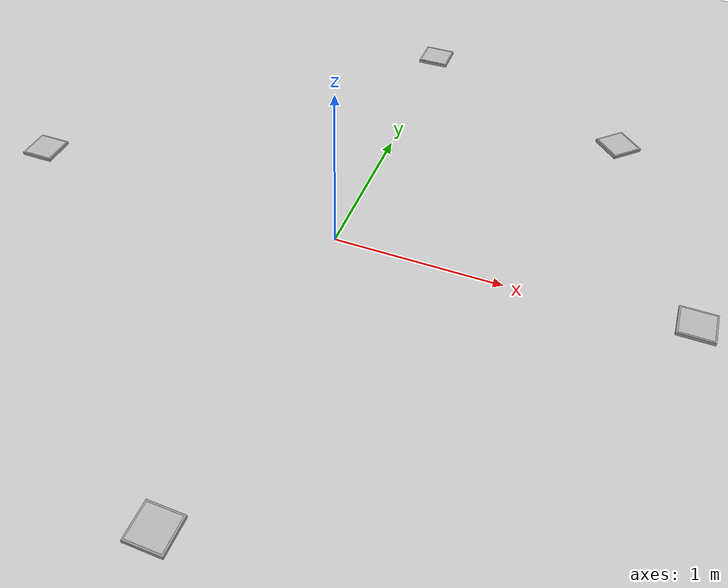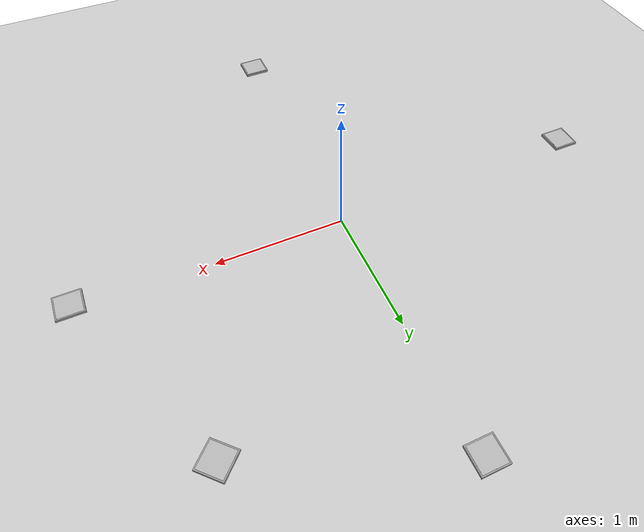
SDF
<sdf version="1.7">
  <world name="default">

    <!-- Light and ground -->
    <include>
      <uri>model://sun</uri>
    </include>

    <include>
      <uri>model://ground_plane</uri>
    </include>

    <!-- ================= MARKER 1 ================= -->
    <model name="marker1_box">
      <static>true</static>
      <pose>2 0 0.1 0 0 0</pose>

      <!-- Grey box -->
      <link name="box">
        <visual name="box_visual">
          <geometry>
            <box>
              <size>0.2 0.2 0.02</size>
            </box>
          </geometry>
          <material>
            <script>
              <name>Gazebo/Grey</name>
            </script>
          </material>
        </visual>
      </link>

      <!-- Marker face -->
      <link name="marker_face">
        <pose>0 0 0.011 0 0 0</pose>
        <visual name="marker_visual">
          <geometry>
            <plane>
              <normal>0 0 1</normal>
              <size>0.18 0.18</size>
            </plane>
          </geometry>
          <material>
            <script>
              <uri>file:///home/med/.gazebo/materials/scripts</uri>
              <name>Aruco/Marker1</name>
            </script>
          </material>
          <cast_shadows>false</cast_shadows>
        </visual>
      </link>
    </model>

    <!-- ================= MARKER 2 ================= -->
    <model name="marker2_box">
      <static>true</static>
      <pose>0 2 0.1 0 0 1.57</pose>

      <link name="box">
        <visual name="box_visual">
          <geometry>
            <box>
              <size>0.2 0.2 0.02</size>
            </box>
          </geometry>
          <material>
            <script>
              <name>Gazebo/Grey</name>
            </script>
          </material>
        </visual>
      </link>

      <link name="marker_face">
        <pose>0 0 0.011 0 0 0</pose>
        <visual name="marker_visual">
          <geometry>
            <plane>
              <normal>0 0 1</normal>
              <size>0.18 0.18</size>
            </plane>
          </geometry>
          <material>
            <script>
              <uri>file:///home/med/.gazebo/materials/scripts</uri>
              <name>Aruco/Marker2</name>
            </script>
          </material>
          <cast_shadows>false</cast_shadows>
        </visual>
      </link>
    </model>

    <!-- ================= MARKER 3 ================= -->
    <model name="marker3_box">
      <static>true</static>
      <pose>-2 0 0.1 0 0 3.14</pose>

      <link name="box">
        <visual name="box_visual">
          <geometry>
            <box>
              <size>0.2 0.2 0.02</size>
            </box>
          </geometry>
          <material>
            <script>
              <name>Gazebo/Grey</name>
            </script>
          </material>
        </visual>
      </link>

      <link name="marker_face">
        <pose>0 0 0.011 0 0 0</pose>
        <visual name="marker_visual">
          <geometry>
            <plane>
              <normal>0 0 1</normal>
              <size>0.18 0.18</size>
            </plane>
          </geometry>
          <material>
            <script>
              <uri>file:///home/med/.gazebo/materials/scripts</uri>
              <name>Aruco/Marker3</name>
            </script>
          </material>
          <cast_shadows>false</cast_shadows>
        </visual>
      </link>
    </model>

    <!-- ================= MARKER 4 ================= -->
    <model name="marker4_box">
      <static>true</static>
      <pose>0 -2 0.1 0 0 -1.57</pose>

      <link name="box">
        <visual name="box_visual">
          <geometry>
            <box>
              <size>0.2 0.2 0.02</size>
            </box>
          </geometry>
          <material>
            <script>
              <name>Gazebo/Grey</name>
            </script>
          </material>
        </visual>
      </link>

      <link name="marker_face">
        <pose>0 0 0.011 0 0 0</pose>
        <visual name="marker_visual">
          <geometry>
            <plane>
              <normal>0 0 1</normal>
              <size>0.18 0.18</size>
            </plane>
          </geometry>
          <material>
            <script>
              <uri>file:///home/med/.gazebo/materials/scripts</uri>
              <name>Aruco/Marker4</name>
            </script>
          </material>
          <cast_shadows>false</cast_shadows>
        </visual>
      </link>
    </model>

    <!-- ================= MARKER 5 ================= -->
    <model name="marker5_box">
      <static>true</static>
      <pose>1.4 1.4 0.1 0 0 0.78</pose>

      <link name="box">
        <visual name="box_visual">
          <geometry>
            <box>
              <size>0.2 0.2 0.02</size>
            </box>
          </geometry>
          <material>
            <script>
              <name>Gazebo/Grey</name>
            </script>
          </material>
        </visual>
      </link>

      <link name="marker_face">
        <pose>0 0 0.011 0 0 0</pose>
        <visual name="marker_visual">
          <geometry>
            <plane>
              <normal>0 0 1</normal>
              <size>0.18 0.18</size>
            </plane>
          </geometry>
          <material>
            <script>
              <uri>file:///home/med/.gazebo/materials/scripts</uri>
              <name>Aruco/Marker5</name>
            </script>
          </material>
          <cast_shadows>false</cast_shadows>
        </visual>
      </link>
    </model>

  </world>
</sdf>
